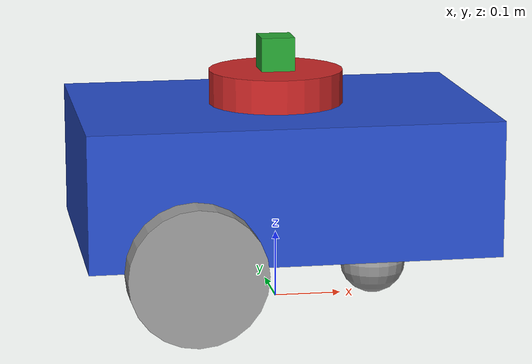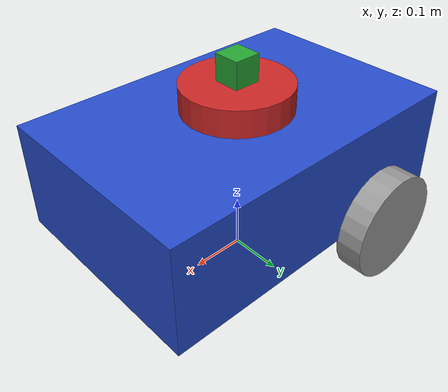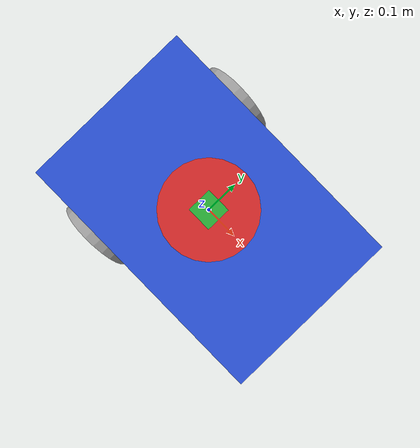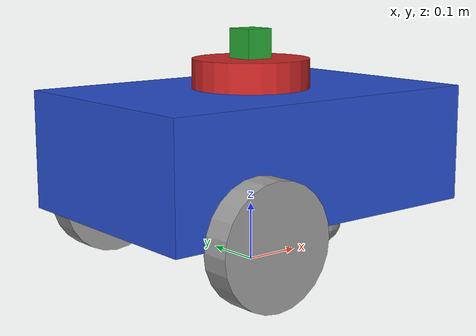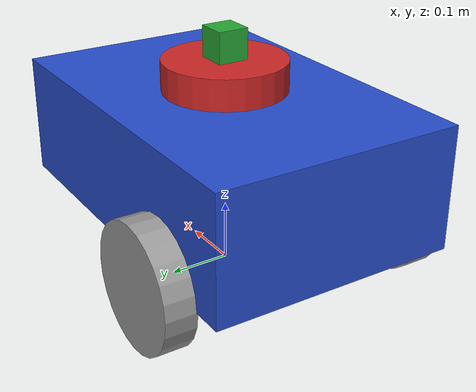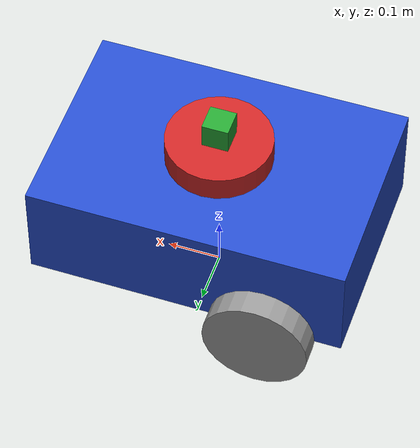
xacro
<?xml version="1.0"?>
<robot xmlns:xacro="http://www.ros.org/wiki/xacro">

    <xacro:property name="base_lenth" value="0.6" />
    <xacro:property name="base_width" value="0.4" />
    <xacro:property name="base_heigh" value="0.2" />
    <xacro:property name="wheel_radius" value="0.1" />
    <xacro:property name="wheel_heigh" value="0.05" />
    <xacro:property name="caster_wheel_radius" value="0.05" />

    <link name="base_footprint">
    </link>

    <link name="base_link">
        <visual>
                <geometry>
                    <box size=" ${base_lenth} ${base_width} ${base_heigh}"/>
                </geometry>
                <origin xyz="0.0 0.0 0.1" rpy="0.0 0.0 0.0"/>
                <material name="blue"/>
        </visual>
        <collision>
            <geometry>
                    <box size=" ${base_lenth} ${base_width} ${base_heigh}"/>
                </geometry>
                <origin xyz="0.0 0.0 0.1" rpy="0.0 0.0 0.0"/>

        </collision>
        <xacro:box_inertia m="5.0"  l="${2*base_lenth}" w="${2*base_width}" h="${2*base_heigh}"
                           xyz="0.0 0.0 0.1"  rpy="0.0 0.0 0.0"/>

    </link>

    <link name="lidar_link">
        <visual>
            <geometry>
                <cylinder radius="0.1" length="0.05"/>
            </geometry>
            <origin xyz="0.0 0.0 0.025" rpy="0.0 0.0 0.0"/>
            <material name="red"/>
        </visual>

    </link>
    <link name="box_link">
        <visual>
            <geometry>
                <box size="0.05 0.05 0.05"/>
            </geometry>
            <origin xyz="0.0 0.0 0.025" rpy="0.0 0.0 0.0"/>
            <material name="green"/>
        </visual>
    </link>

    <link name="right_wheel_link">
        <visual>
            <geometry>
                <cylinder radius="0.1" length="0.05"/>
            </geometry>
            <material name="grey"/>
            <origin xyz="0.0 -0.0225 0" rpy="${pi/2.0} 0.0 0.0"/>
        </visual>
        <collision>
            <geometry>
                <cylinder radius="0.1" length="0.05"/>
            </geometry>
            <origin xyz="0.0 -0.0225 0" rpy="${pi/2.0} 0.0 0.0"/>

        </collision>

        <xacro:wheel_inertia m="1.0"  r="${2*wheel_radius}" h="${2*wheel_heigh}"
                             xyz="0.0 -0.0225 0"  rpy="${pi/2.0} 0.0 0.0"/>
    </link>

    <link name="left_wheel_link">
        <visual>
            <geometry>
                <cylinder radius="0.1" length="0.05"/>
            </geometry>
            <material name="grey"/>
            <origin xyz="0.0 0.0225 0" rpy="${pi/2.0} 0.0 0.0"/>
        </visual>
        <collision>
            <geometry>
                <cylinder radius="0.1" length="0.05"/>
            </geometry>
            <origin xyz="0.0 0.0225 0" rpy="${pi/2.0} 0.0 0.0"/>

        </collision>

        <xacro:wheel_inertia m="1.0"  r="${2*wheel_radius}" h="${2*wheel_heigh}"
                             xyz="0.0  0.0225 0"  rpy="${pi/2.0} 0.0 0.0"/>
    </link>

    <link name="caster_link">
        <visual>
            <geometry>
                <sphere radius="0.05"/>
            </geometry>
            <material name="grey"/>
            <origin xyz="0.0 0.0 0" rpy="0.0 0.0 0.0"/>
        </visual>
        <collision>
            <geometry>
                <sphere radius="0.05"/>
            </geometry>
            <origin xyz="0.0 0.0 0" rpy="0.0 0.0 0.0"/>

        </collision>

        <xacro:sphere_inertia m="0.5"  r="${2*caster_wheel_radius}"
                             xyz="0.0 0.0 0"  rpy="0.0 0.0 0.0"/>

    </link>

    <joint name="base_joint" type="fixed">
        <parent link="base_footprint"/>
        <child link="base_link"/>
        <origin xyz="0.0 0.0 0.1" rpy="0.0 0.0 0.0"/>

    </joint>

    <joint name="base_lidar" type="fixed">
        <parent link="base_link"/>
        <child link="lidar_link"/>
        <origin xyz="0.0 0.0 0.2" rpy="0.0 0.0 0.0"/>

    </joint>
    <joint name="lidar_box" type="fixed">
        <parent link="lidar_link"/>
        <child link="box_link"/>
        <origin xyz="0.0 0.0 0.05" rpy="0.0 0.0 0.0"/>

    </joint>
    <joint name="base_right_wheel" type="continuous">
        <origin xyz="${-base_lenth/4.0} -0.2 0.0" rpy="0 0.0 0.0"/>
        <parent link="base_link"/>
        <child link="right_wheel_link"/>
        <axis xyz="0.0 1.0 0.0"/>
    </joint>
    <joint name="base_left_wheel" type="continuous">
        <origin xyz="${-base_lenth/4.0} 0.2 0.0" rpy="0 0.0 0.0"/>
        <parent link="base_link"/>
        <child link="left_wheel_link"/>
        <axis xyz="0.0 1.0 0.0"/>
    </joint>

    <joint name="caster_link" type="fixed">
        <parent link="base_link"/>
        <child link="caster_link"/>
        <origin xyz="0.15 0.0 -0.05" rpy="0.0 0.0 0.0"/>

    </joint>

</robot>
